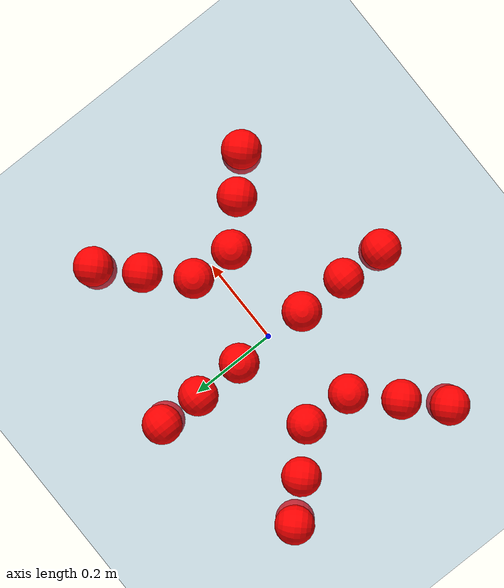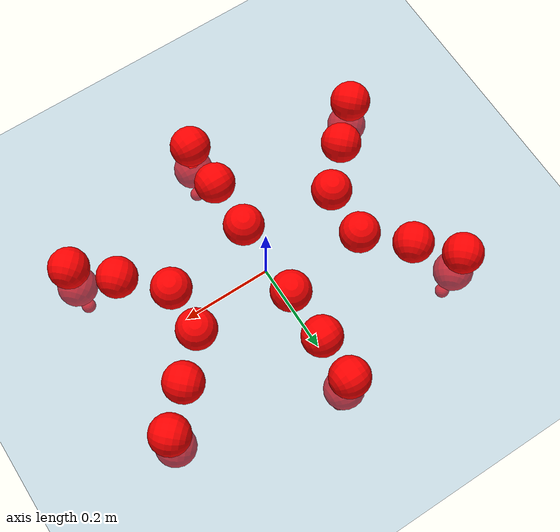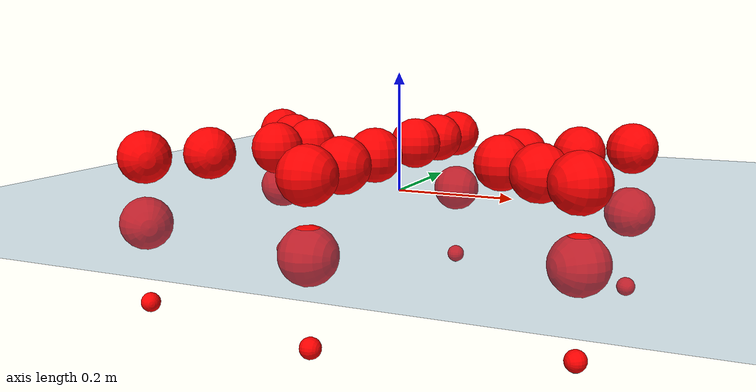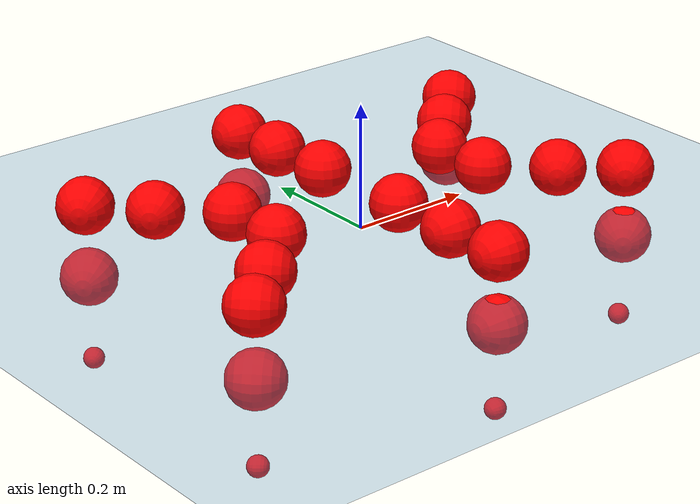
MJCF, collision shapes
<mujoco model="Golem">
  <compiler angle="radian" assetdir="assets" balanceinertia="true" inertiafromgeom="false"/>

  <option timestep="0.005" density="1.2" viscosity="2e-05"/>

  <size nkey="1"/>

  <visual>
    <quality shadowsize="8192"/>
    <map shadowclip="0.5"/>
  </visual>

  <default>
    <default class="/">
      <joint armature="0.01" damping="0.01" frictionloss="0.01"/>
      <geom contype="0" conaffinity="0" group="1" solref="-1000 -80"/>
      <site size="0.01 0.005 0.005" group="5"/>
      <general forcelimited="true" biastype="affine" gainprm="25" biasprm="0 -25 -0.5"/>
      <default class="visual">
        <geom type="mesh" group="2"/>
      </default>
      <default class="collision">
        <geom group="3"/>
      </default>
      <default class="foot">
        <geom size="0.01 0 0" condim="6" group="4" priority="1" solimp="0.015 1 0.01"/>
      </default>
      <default class="reward_collision_sphere">
        <geom group="5" rgba="1 0 0 1"/>
      </default>
    </default>
  </default>

  <asset>
    <texture type="skybox" colorspace="auto" name="//unnamed_texture_0" builtin="gradient" rgb1="0.95 0.95 0.95" rgb2="0.95 0.95 0.95" width="100" height="600"/>
    <texture type="2d" colorspace="auto" name="texplane" builtin="checker" rgb1="0.345 0.575 0.748" rgb2="0.345 0.575 0.748" markrgb="1 1 1" width="512" height="512"/>
    <material name="MatPlane" class="/" texture="texplane" texuniform="true" texrepeat="2 2" specular="0.9"/>
    <mesh name="body" class="/" file="body.stl" scale="0.001 0.001 0.001"/>
    <mesh name="coxa" class="/" file="coxa.stl" scale="0.001 0.001 0.001"/>
    <mesh name="femur" class="/" file="femur.stl" scale="0.001 0.001 0.001"/>
    <mesh name="tibia" class="/" file="tibia.stl" scale="0.001 0.001 0.001"/>
    <mesh name="tarsus" class="/" file="tarsus.stl" scale="0.001 0.001 0.001"/>
  </asset>

  <worldbody>
    <geom name="floor" class="/" size="100 100 0.125" type="plane" group="0" material="MatPlane"/>
    <light name="toplight_shadow" class="/" pos="0 0 5" dir="0.0990148 0.0990148 -0.990148" type="directional" ambient="0.04 0.04 0.04" diffuse="0.55 0.55 0.55" specular="0.12 0.12 0.12"/>
    <light name="toplight_fill" class="/" pos="0 0 5" dir="0.0990148 0.0990148 -0.990148" type="directional" castshadow="false" ambient="0.04 0.04 0.04" diffuse="0.3 0.3 0.3" specular="0.08 0.08 0.08"/>
    <body name="trunk" pos="-0.00283719 -0.0027797 -0.000169709" quat="0.999999 -0.000165449 -0.00063453 -0.000895725">
      <inertial pos="0.00322071 -0.000890514 -0.0019324" quat="0.999902 0.00926003 -0.00416903 -0.00967895" mass="5.30166" diaginertia="0.0352252 0.00892243 0.0156161"/>
      <joint name="//unnamed_joint_0" type="free"/>
      <geom name="//unnamed_geom_1" class="/" pos="0 0 0.0690729" quat="1 0 0 0" type="mesh" rgba="0.9 0.9 0.9 1" mesh="body"/>
      <site name="imu" class="/" pos="0.178785 0.0141852 0.106171" size="0.0111078"/>
      <camera name="track" class="/" pos="0 -1.9433 0" quat="0.707107 0.707107 0 0" mode="trackcom"/>
      <camera name="ego_camera" class="/" pos="0.166586 0 0.107926" quat="-0.5 -0.5 0.5 0.5"/>
      <body name="coxa_RR" pos="-0.229869 -0.0831403 0.0700988" quat="0.382918 -0.000537203 0.000345023 -0.923782">
        <inertial pos="-0.000313893 -0.000543789 0.00174863" quat="0.999998 0.00127539 0.000134472 0.00131377" mass="0.276987" diaginertia="0.0336195 0.00862521 0.0146659"/>
        <joint name="coxa_joint_RR" class="/" pos="0 0 0" axis="-0.00160088 0.000640761 -0.999999" range="-3.13932 3.0965" armature="0.0113275" damping="0.00408585" frictionloss="0.0116845"/>
        <geom name="//unnamed_geom_2" class="/" type="mesh" rgba="0.2 0.2 0.2 1" mesh="coxa"/>
        <geom name="//unnamed_geom_3" class="reward_collision_sphere" size="0.0444312" pos="-0.0384429 0 0"/>
        <body name="femur_RR" pos="0.0785544 0.000956341 -0.00315428" quat="0.49993 -0.500021 0.500038 0.50001">
          <inertial pos="-0.00130908 -0.000117838 -0.000501303" quat="0.999987 0.00505762 0.00022518 7.20228e-05" mass="0.264849" diaginertia="0.0335379 0.00846092 0.0143485"/>
          <joint name="femur_joint_RR" class="/" pos="0 0 0" axis="0.00925152 -0.00596255 -0.999939" stiffness="0.000514408" range="-3.15789 3.13109" armature="0.011812" damping="0.0189857" frictionloss="0.0110639"/>
          <geom name="//unnamed_geom_4" class="/" type="mesh" rgba="0.9 0.9 0.9 1" mesh="femur"/>
          <geom name="//unnamed_geom_5" class="reward_collision_sphere" size="0.0444312"/>
          <body name="tibia_RR" pos="0.00133114 -0.106632 -0.000863878" quat="0.000506317 1 -7.33102e-05 0.000161858">
            <inertial pos="0.00024623 -0.000224748 -0.00230363" quat="0.999904 -0.0100718 0.00705265 -0.00636052" mass="0.28191" diaginertia="0.0346441 0.00897726 0.0147601"/>
            <joint name="tibia_joint_RR" class="/" pos="0 0 0" axis="0.011911 -0.00695498 0.999905" range="-3.19558 3.14035" armature="0.00982652" damping="0" frictionloss="0.00962817"/>
            <geom name="//unnamed_geom_6" class="/" type="mesh" rgba="0.2 0.2 0.2 1" mesh="tibia"/>
            <geom name="//unnamed_geom_7" class="reward_collision_sphere" size="0.0444312"/>
            <body name="tarsus_RR" pos="0.11119 0.00260404 -0.00037696" quat="1 -4.60091e-05 -6.48789e-05 3.05602e-05">
              <inertial pos="0.0757648 0.000120293 -0.000403574" quat="0.496014 0.50309 0.500181 0.500689" mass="0.265455" diaginertia="0.0342706 0.00830129 0.0145033"/>
              <joint name="tarsus_joint_RR" class="/" pos="0 0 0" axis="0.000483439 0.00332053 0.999994" range="-3.11993 3.08237" armature="0.00993872" damping="0.0427672" frictionloss="0.01162"/>
              <geom name="//unnamed_geom_8" class="/" type="mesh" rgba="0.9 0.9 0.9 1" mesh="tarsus"/>
              <geom name="foot_1" class="foot" size="0.0111872" pos="0.14352 0 0" quat="0 -0.707107 0 0.707107"/>
              <geom name="//unnamed_geom_10" class="reward_collision_sphere" size="0.0444312"/>
              <geom name="//unnamed_geom_11" class="reward_collision_sphere" size="0.0166617" pos="0.137754 0 0"/>
              <site name="foot_1" class="foot" pos="0.14352 0 0" quat="0 -0.707107 0 0.707107" size="0.0111078"/>
            </body>
          </body>
        </body>
      </body>
      <body name="coxa_RM" pos="0.000135707 -0.126833 0.0731468" quat="0.707304 -0.000317878 -0.000430359 -0.70691">
        <inertial pos="-0.00245296 3.84339e-05 -0.00180342" quat="0.999907 0.0127906 0.00313609 0.0036049" mass="0.273984" diaginertia="0.033021 0.00863895 0.0141778"/>
        <joint name="coxa_joint_RM" class="/" pos="0 0 0" axis="-0.00334979 7.03231e-05 -0.999994" stiffness="0.00368277" range="-3.13875 3.1568" armature="0.0107558" damping="0.011747" frictionloss="0.00987496"/>
        <geom name="//unnamed_geom_12" class="/" type="mesh" rgba="0.2 0.2 0.2 1" mesh="coxa"/>
        <geom name="//unnamed_geom_13" class="reward_collision_sphere" size="0.0444312" pos="-0.0384429 0 0"/>
        <body name="femur_RM" pos="0.0775215 6.97257e-05 -0.00025496" quat="0.500486 -0.500285 0.498678 0.500549">
          <inertial pos="0.00168701 0.000251325 0.000133216" quat="0.99998 -0.00546068 0.00314113 -0.000423659" mass="0.271911" diaginertia="0.0347623 0.00836399 0.0146947"/>
          <joint name="femur_joint_RM" class="/" pos="0 0 0" axis="0.0115879 -0.00403526 -0.999925" range="-3.14835 3.12752" armature="0.012028" damping="0.0176271" frictionloss="0.0116619"/>
          <geom name="//unnamed_geom_14" class="/" type="mesh" rgba="0.9 0.9 0.9 1" mesh="femur"/>
          <geom name="//unnamed_geom_15" class="reward_collision_sphere" size="0.0444312"/>
          <body name="tibia_RM" pos="-0.000291483 -0.103263 -0.000970396" quat="-4.45995e-05 1 -1.70162e-05 -5.19352e-06">
            <inertial pos="-0.00112012 0.00211878 -0.00276234" quat="0.999997 0.00127227 -0.000431969 -0.00212699" mass="0.285671" diaginertia="0.0359469 0.00842202 0.0145028"/>
            <joint name="tibia_joint_RM" class="/" pos="0 0 0" axis="-0.00945847 -0.00860243 0.999918" range="-3.15465 3.0995" armature="0.0115368" damping="0.0114494" frictionloss="0.0100787"/>
            <geom name="//unnamed_geom_16" class="/" type="mesh" rgba="0.2 0.2 0.2 1" mesh="tibia"/>
            <geom name="//unnamed_geom_17" class="reward_collision_sphere" size="0.0444312"/>
            <body name="tarsus_RM" pos="0.11478 0.00118073 0.00013303" quat="1 -0.000215608 -0.000536763 -1.49734e-05">
              <inertial pos="0.0772357 -0.000626784 0.00112235" quat="0.500067 0.500109 0.499513 0.500311" mass="0.275131" diaginertia="0.0341949 0.00875452 0.015398"/>
              <joint name="tarsus_joint_RM" class="/" pos="0 0 0" axis="-0.00506771 -0.0128233 0.999905" range="-3.16035 3.13528" armature="0.0109852" damping="0.00491296" frictionloss="0.0105419"/>
              <geom name="//unnamed_geom_18" class="/" type="mesh" rgba="0.9 0.9 0.9 1" mesh="tarsus"/>
              <geom name="foot_2" class="foot" size="0.0104322" pos="0.14352 0 0" quat="0 -0.707107 0 0.707107"/>
              <geom name="//unnamed_geom_20" class="reward_collision_sphere" size="0.0444312"/>
              <geom name="//unnamed_geom_21" class="reward_collision_sphere" size="0.0166617" pos="0.137754 0 0"/>
              <site name="foot_2" class="foot" pos="0.14352 0 0" quat="0 -0.707107 0 0.707107" size="0.0111078"/>
            </body>
          </body>
        </body>
      </body>
      <body name="coxa_RF" pos="0.228391 -0.0789699 0.06762" quat="0.923886 0.000260794 0.000505258 -0.382668">
        <inertial pos="-0.000746123 -0.000195345 -0.000977645" quat="0.999929 -0.00103209 0.00361468 0.0113277" mass="0.281222" diaginertia="0.0366373 0.00868323 0.0149552"/>
        <joint name="coxa_joint_RF" class="/" pos="0 0 0" axis="-0.000187352 0.00161599 -0.999999" range="-3.18254 3.13919" armature="0.0124924" damping="0.0120276" frictionloss="0.010302"/>
        <geom name="//unnamed_geom_22" class="/" type="mesh" rgba="0.2 0.2 0.2 1" mesh="coxa"/>
        <geom name="//unnamed_geom_23" class="reward_collision_sphere" size="0.0444312" pos="-0.0384429 0 0"/>
        <body name="femur_RF" pos="0.0770109 0.000879502 0.00155388" quat="0.499956 -0.500446 0.499631 0.499966">
          <inertial pos="0.00274807 0.00124413 0.00265447" quat="0.999986 -0.002276 0.00392714 0.00253401" mass="0.265565" diaginertia="0.0359337 0.00843478 0.0148788"/>
          <joint name="femur_joint_RF" class="/" pos="0 0 0" axis="-0.0122108 -0.0082193 -0.999892" range="-3.14833 3.081" armature="0.0113745" damping="0.00891879" frictionloss="0.010747"/>
          <geom name="//unnamed_geom_24" class="/" type="mesh" rgba="0.9 0.9 0.9 1" mesh="femur"/>
          <geom name="//unnamed_geom_25" class="reward_collision_sphere" size="0.0444312"/>
          <body name="tibia_RF" pos="-0.00235779 -0.103027 0.00208495" quat="0.000384494 1 0.000419539 5.12718e-05">
            <inertial pos="-0.00137729 -0.00234455 0.00178215" quat="0.999906 -0.00368452 -0.0089496 0.00970743" mass="0.284299" diaginertia="0.0344253 0.00856904 0.0146449"/>
            <joint name="tibia_joint_RF" class="/" pos="0 0 0" axis="-0.00140536 0.000742827 0.999999" range="-3.1566 3.0813" armature="0.0117078" damping="0.019711" frictionloss="0.010605"/>
            <geom name="//unnamed_geom_26" class="/" type="mesh" rgba="0.2 0.2 0.2 1" mesh="tibia"/>
            <geom name="//unnamed_geom_27" class="reward_collision_sphere" size="0.0444312"/>
            <body name="tarsus_RF" pos="0.113195 0.00191091 -0.0018533" quat="0.999999 -0.000282044 0.00143093 0.000216909">
              <inertial pos="0.0788008 0.000187164 0.00100739" quat="0.500632 0.500594 0.499667 0.499105" mass="0.278677" diaginertia="0.0353955 0.00873238 0.0141264"/>
              <joint name="tarsus_joint_RF" class="/" pos="0 0 0" axis="0.00445856 -0.00126086 0.999989" range="-3.19347 3.14226" armature="0.0126008" damping="0.00596473" frictionloss="0.0114952"/>
              <geom name="//unnamed_geom_28" class="/" type="mesh" rgba="0.9 0.9 0.9 1" mesh="tarsus"/>
              <geom name="foot_3" class="foot" size="0.0118092" pos="0.14352 0 0" quat="0 -0.707107 0 0.707107"/>
              <geom name="//unnamed_geom_30" class="reward_collision_sphere" size="0.0444312"/>
              <geom name="//unnamed_geom_31" class="reward_collision_sphere" size="0.0166617" pos="0.137754 0 0"/>
              <site name="foot_3" class="foot" pos="0.14352 0 0" quat="0 -0.707107 0 0.707107" size="0.0111078"/>
            </body>
          </body>
        </body>
      </body>
      <body name="coxa_LR" pos="-0.225884 0.0833333 0.0653565" quat="0.382895 0.000963415 -0.000150323 0.923791">
        <inertial pos="0.000725127 0.000321153 -0.00084367" quat="0.999911 0.00759454 -0.00654305 -0.00874779" mass="0.265167" diaginertia="0.0344024 0.00864232 0.0146161"/>
        <joint name="coxa_joint_LR" class="/" pos="0 0 0" axis="0.00229056 0.00140072 -0.999996" stiffness="0.0133111" range="-3.16052 3.15743" armature="0.0126196" damping="0.00859248" frictionloss="0.0105779"/>
        <geom name="//unnamed_geom_32" class="/" type="mesh" rgba="0.2 0.2 0.2 1" mesh="coxa"/>
        <geom name="//unnamed_geom_33" class="reward_collision_sphere" size="0.0444312" pos="-0.0384429 0 0"/>
        <body name="femur_LR" pos="0.0767833 0.00190561 -0.00114858" quat="0.499785 -0.499591 0.500185 0.500438">
          <inertial pos="0.000608661 0.00104249 0.000738827" quat="0.999906 0.00653748 0.0112911 -0.00413803" mass="0.265076" diaginertia="0.0325098 0.00843745 0.0139647"/>
          <joint name="femur_joint_LR" class="/" pos="0 0 0" axis="0.00466758 0.00398126 0.999981" range="-3.16158 3.08568" armature="0.0125629" damping="0" frictionloss="0.0104851"/>
          <geom name="//unnamed_geom_34" class="/" type="mesh" rgba="0.9 0.9 0.9 1" mesh="femur"/>
          <geom name="//unnamed_geom_35" class="reward_collision_sphere" size="0.0444312"/>
          <body name="tibia_LR" pos="-0.00116101 -0.105932 -0.00255457" quat="0.00135464 0.999999 0.000209713 6.64696e-05">
            <inertial pos="0.00285762 0.00150196 0.000397089" quat="0.999917 -0.00816041 0.000918411 0.00996846" mass="0.267983" diaginertia="0.0353396 0.00904714 0.0146728"/>
            <joint name="tibia_joint_LR" class="/" pos="0 0 0" axis="-0.00453648 -0.00167626 -0.999988" stiffness="0.0089044" range="-3.14686 3.12999" armature="0.0119179" damping="0.0141937" frictionloss="0.0126195"/>
            <geom name="//unnamed_geom_36" class="/" type="mesh" rgba="0.2 0.2 0.2 1" mesh="tibia"/>
            <geom name="//unnamed_geom_37" class="reward_collision_sphere" size="0.0444312"/>
            <body name="tarsus_LR" pos="0.115867 -0.000390822 -0.00215885" quat="0.999999 -0.000141075 0.000426499 -0.00101492">
              <inertial pos="0.0748615 -0.00259557 -0.00163482" quat="0.493836 0.494944 0.502644 0.508434" mass="0.276311" diaginertia="0.0346752 0.00867483 0.0145501"/>
              <joint name="tarsus_joint_LR" class="/" pos="0 0 0" axis="-0.000436742 0.000975375 -0.999999" stiffness="0.0053156" range="-3.13307 3.14102" armature="0.0105043" damping="0.0292335" frictionloss="0.0102156"/>
              <geom name="//unnamed_geom_38" class="/" type="mesh" rgba="0.9 0.9 0.9 1" mesh="tarsus"/>
              <geom name="foot_4" class="foot" size="0.0113279" pos="0.14352 0 0" quat="0.707107 0 -0.707107 0"/>
              <geom name="//unnamed_geom_40" class="reward_collision_sphere" size="0.0444312"/>
              <geom name="//unnamed_geom_41" class="reward_collision_sphere" size="0.0166617" pos="0.137754 0 0"/>
              <site name="foot_4" class="foot" pos="0.14352 0 0" quat="0.707107 0 -0.707107 0" size="0.0111078"/>
            </body>
          </body>
        </body>
      </body>
      <body name="coxa_LM" pos="-0.00313992 0.126932 0.0714408" quat="0.707163 2.29173e-05 -7.9271e-05 0.707051">
        <inertial pos="0.00251904 -0.00195588 -0.00227842" quat="0.999925 -0.00648597 -0.00654018 -0.00805719" mass="0.276427" diaginertia="0.0345417 0.00887214 0.0151655"/>
        <joint name="coxa_joint_LM" class="/" pos="0 0 0" axis="0.00271182 -0.00231393 -0.999994" stiffness="0.00441529" range="-3.1385 3.14717" armature="0.0113641" damping="0" frictionloss="0.0118573"/>
        <geom name="//unnamed_geom_42" class="/" type="mesh" rgba="0.2 0.2 0.2 1" mesh="coxa"/>
        <geom name="//unnamed_geom_43" class="reward_collision_sphere" size="0.0444312" pos="-0.0384429 0 0"/>
        <body name="femur_LM" pos="0.0760506 0.00068894 -0.00285453" quat="0.50104 -0.499692 0.500098 0.499169">
          <inertial pos="-0.00244143 -2.92532e-06 -0.00189642" quat="0.999904 0.00175743 0.0071927 0.0117295" mass="0.291036" diaginertia="0.0356853 0.00886564 0.0151415"/>
          <joint name="femur_joint_LM" class="/" pos="0 0 0" axis="0.0037588 -0.00299148 0.999988" range="-3.08317 3.15712" armature="0.0128042" damping="0" frictionloss="0.0110311"/>
          <geom name="//unnamed_geom_44" class="/" type="mesh" rgba="0.9 0.9 0.9 1" mesh="femur"/>
          <geom name="//unnamed_geom_45" class="reward_collision_sphere" size="0.0444312"/>
          <body name="tibia_LM" pos="0.00326068 -0.100291 -9.90961e-05" quat="1.91778e-05 1 0.000175023 -0.000381233">
            <inertial pos="0.00134469 0.000793805 0.000479153" quat="0.999998 0.000662597 -0.00152914 -0.00102493" mass="0.278071" diaginertia="0.0339143 0.00853419 0.0153211"/>
            <joint name="tibia_joint_LM" class="/" pos="0 0 0" axis="0.0111796 0.00615292 -0.999919" range="-3.1199 3.14909" armature="0.0126911" damping="0.00666813" frictionloss="0.00961461"/>
            <geom name="//unnamed_geom_46" class="/" type="mesh" rgba="0.2 0.2 0.2 1" mesh="tibia"/>
            <geom name="//unnamed_geom_47" class="reward_collision_sphere" size="0.0444312"/>
            <body name="tarsus_LM" pos="0.110623 -0.00246586 0.00234505" quat="0.999999 -0.00117932 -0.00064274 0.000684493">
              <inertial pos="0.0786076 0.00180167 0.00284321" quat="0.496735 0.501202 0.503159 0.49888" mass="0.278322" diaginertia="0.0343312 0.00879788 0.0144516"/>
              <joint name="tarsus_joint_LM" class="/" pos="0 0 0" axis="-0.0100047 -0.00571066 -0.999934" stiffness="0.00885813" range="-3.14048 3.12173" armature="0.0112391" damping="0.0179876" frictionloss="0.0112406"/>
              <geom name="//unnamed_geom_48" class="/" type="mesh" rgba="0.9 0.9 0.9 1" mesh="tarsus"/>
              <geom name="foot_5" class="foot" size="0.0114517" pos="0.14352 0 0" quat="0.707107 0 -0.707107 0"/>
              <geom name="//unnamed_geom_50" class="reward_collision_sphere" size="0.0444312"/>
              <geom name="//unnamed_geom_51" class="reward_collision_sphere" size="0.0166617" pos="0.137754 0 0"/>
              <site name="foot_5" class="foot" pos="0.14352 0 0" quat="0.707107 0 -0.707107 0" size="0.0111078"/>
            </body>
          </body>
        </body>
      </body>
      <body name="coxa_LF" pos="0.230039 0.0784754 0.0667021" quat="0.924102 0.000474425 -0.000623485 0.382146">
        <inertial pos="-0.000371073 0.00108291 0.000309079" quat="0.999991 -0.000552832 -0.00204411 -0.00363321" mass="0.268313" diaginertia="0.0337207 0.0090511 0.0148372"/>
        <joint name="coxa_joint_LF" class="/" pos="0 0 0" axis="-0.0170974 0.00324787 -0.999849" range="-3.13227 3.1178" armature="0.0111943" damping="0.0220314" frictionloss="0.0117038"/>
        <geom name="//unnamed_geom_52" class="/" type="mesh" rgba="0.2 0.2 0.2 1" mesh="coxa"/>
        <geom name="//unnamed_geom_53" class="reward_collision_sphere" size="0.0444312" pos="-0.0384429 0 0"/>
        <body name="femur_LF" pos="0.0745717 0.000358001 -0.00181872" quat="0.500769 -0.49943 0.500492 0.499307">
          <inertial pos="0.00286648 -0.000315066 0.000593775" quat="0.999943 0.00881715 0.00397848 -0.00460337" mass="0.27129" diaginertia="0.0333923 0.00871892 0.0148606"/>
          <joint name="femur_joint_LF" class="/" pos="0 0 0" axis="0.0048415 0.0104724 0.999933" range="-3.1429 3.11388" armature="0.0108897" damping="0" frictionloss="0.0113985"/>
          <geom name="//unnamed_geom_54" class="/" type="mesh" rgba="0.9 0.9 0.9 1" mesh="femur"/>
          <geom name="//unnamed_geom_55" class="reward_collision_sphere" size="0.0444312"/>
          <body name="tibia_LF" pos="-0.00108921 -0.107714 -0.000480343" quat="0.000555013 1 0.00081629 -0.000115533">
            <inertial pos="0.000518615 -0.00155413 0.000331947" quat="0.999997 0.00182439 0.00144629 0.00102554" mass="0.274985" diaginertia="0.0332734 0.00864511 0.014326"/>
            <joint name="tibia_joint_LF" class="/" pos="0 0 0" axis="-0.00984005 0.00862519 -0.999914" range="-3.18722 3.11856" armature="0.0126614" damping="0" frictionloss="0.0121088"/>
            <geom name="//unnamed_geom_56" class="/" type="mesh" rgba="0.2 0.2 0.2 1" mesh="tibia"/>
            <geom name="//unnamed_geom_57" class="reward_collision_sphere" size="0.0444312"/>
            <body name="tarsus_LF" pos="0.114311 0.00283478 -0.00304334" quat="1 -8.53233e-05 0.000102538 8.25288e-05">
              <inertial pos="0.0750557 0.000740422 0.000472164" quat="0.502656 0.501774 0.499542 0.496001" mass="0.272396" diaginertia="0.0347738 0.00874618 0.0141167"/>
              <joint name="tarsus_joint_LF" class="/" pos="0 0 0" axis="-0.00345223 0.00188524 -0.999992" stiffness="0.0258443" range="-3.10687 3.09091" armature="0.0120367" damping="0.0253923" frictionloss="0.0125399"/>
              <geom name="//unnamed_geom_58" class="/" type="mesh" rgba="0.9 0.9 0.9 1" mesh="tarsus"/>
              <geom name="foot_6" class="foot" size="0.0101057" pos="0.14352 0 0" quat="0.707107 0 -0.707107 0"/>
              <geom name="//unnamed_geom_60" class="reward_collision_sphere" size="0.0444312"/>
              <geom name="//unnamed_geom_61" class="reward_collision_sphere" size="0.0166617" pos="0.137754 0 0"/>
              <site name="foot_6" class="foot" pos="0.14352 0 0" quat="0.707107 0 -0.707107 0" size="0.0111078"/>
            </body>
          </body>
        </body>
      </body>
    </body>
  </worldbody>

  <contact>
    <pair class="/" geom1="floor" geom2="foot_1" name="//unnamed_contact_0"/>
    <pair class="/" geom1="floor" geom2="foot_2" name="//unnamed_contact_1"/>
    <pair class="/" geom1="floor" geom2="foot_3" name="//unnamed_contact_2"/>
    <pair class="/" geom1="floor" geom2="foot_4" name="//unnamed_contact_3"/>
    <pair class="/" geom1="floor" geom2="foot_5" name="//unnamed_contact_4"/>
    <pair class="/" geom1="floor" geom2="foot_6" name="//unnamed_contact_5"/>
  </contact>

  <actuator>
    <general name="coxa_joint_RR" class="/" joint="coxa_joint_RR" forcerange="-7.67419 7.67419" gainprm="26.428" biasprm="0 -26.428 -0.530112"/>
    <general name="femur_joint_RR" class="/" joint="femur_joint_RR" forcerange="-8.84646 8.84646" gainprm="26.428" biasprm="0 -26.428 -0.530112"/>
    <general name="tibia_joint_RR" class="/" joint="tibia_joint_RR" forcerange="-7.86902 7.86902" gainprm="26.428" biasprm="0 -26.428 -0.530112"/>
    <general name="tarsus_joint_RR" class="/" joint="tarsus_joint_RR" forcerange="-8.93171 8.93171" gainprm="26.428" biasprm="0 -26.428 -0.530112"/>
    <general name="coxa_joint_RM" class="/" joint="coxa_joint_RM" forcerange="-8.14825 8.14825" gainprm="26.428" biasprm="0 -26.428 -0.530112"/>
    <general name="femur_joint_RM" class="/" joint="femur_joint_RM" forcerange="-8.05937 8.05937" gainprm="26.428" biasprm="0 -26.428 -0.530112"/>
    <general name="tibia_joint_RM" class="/" joint="tibia_joint_RM" forcerange="-7.51507 7.51507" gainprm="26.428" biasprm="0 -26.428 -0.530112"/>
    <general name="tarsus_joint_RM" class="/" joint="tarsus_joint_RM" forcerange="-8.42332 8.42332" gainprm="26.428" biasprm="0 -26.428 -0.530112"/>
    <general name="coxa_joint_RF" class="/" joint="coxa_joint_RF" forcerange="-8.1687 8.1687" gainprm="26.428" biasprm="0 -26.428 -0.530112"/>
    <general name="femur_joint_RF" class="/" joint="femur_joint_RF" forcerange="-8.27476 8.27476" gainprm="26.428" biasprm="0 -26.428 -0.530112"/>
    <general name="tibia_joint_RF" class="/" joint="tibia_joint_RF" forcerange="-8.5958 8.5958" gainprm="26.428" biasprm="0 -26.428 -0.530112"/>
    <general name="tarsus_joint_RF" class="/" joint="tarsus_joint_RF" forcerange="-8.81424 8.81424" gainprm="26.428" biasprm="0 -26.428 -0.530112"/>
    <general name="coxa_joint_LR" class="/" joint="coxa_joint_LR" forcerange="-8.02169 8.02169" gainprm="26.428" biasprm="0 -26.428 -0.530112"/>
    <general name="femur_joint_LR" class="/" joint="femur_joint_LR" forcerange="-7.35792 7.35792" gainprm="26.428" biasprm="0 -26.428 -0.530112"/>
    <general name="tibia_joint_LR" class="/" joint="tibia_joint_LR" forcerange="-7.41678 7.41678" gainprm="26.428" biasprm="0 -26.428 -0.530112"/>
    <general name="tarsus_joint_LR" class="/" joint="tarsus_joint_LR" forcerange="-7.24657 7.24657" gainprm="26.428" biasprm="0 -26.428 -0.530112"/>
    <general name="coxa_joint_LM" class="/" joint="coxa_joint_LM" forcerange="-7.4157 7.4157" gainprm="26.428" biasprm="0 -26.428 -0.530112"/>
    <general name="femur_joint_LM" class="/" joint="femur_joint_LM" forcerange="-7.82349 7.82349" gainprm="26.428" biasprm="0 -26.428 -0.530112"/>
    <general name="tibia_joint_LM" class="/" joint="tibia_joint_LM" forcerange="-7.2694 7.2694" gainprm="26.428" biasprm="0 -26.428 -0.530112"/>
    <general name="tarsus_joint_LM" class="/" joint="tarsus_joint_LM" forcerange="-8.07519 8.07519" gainprm="26.428" biasprm="0 -26.428 -0.530112"/>
    <general name="coxa_joint_LF" class="/" joint="coxa_joint_LF" forcerange="-7.57967 7.57967" gainprm="26.428" biasprm="0 -26.428 -0.530112"/>
    <general name="femur_joint_LF" class="/" joint="femur_joint_LF" forcerange="-8.30783 8.30783" gainprm="26.428" biasprm="0 -26.428 -0.530112"/>
    <general name="tibia_joint_LF" class="/" joint="tibia_joint_LF" forcerange="-8.96795 8.96795" gainprm="26.428" biasprm="0 -26.428 -0.530112"/>
    <general name="tarsus_joint_LF" class="/" joint="tarsus_joint_LF" forcerange="-7.43879 7.43879" gainprm="26.428" biasprm="0 -26.428 -0.530112"/>
  </actuator>

  <sensor>
    <gyro site="imu" name="imu_angular_velocity"/>
    <velocimeter site="imu" name="imu_linear_velocity"/>
    <framelinvel objtype="site" objname="foot_1" name="foot_1_global_linear_velocity"/>
    <framelinvel objtype="site" objname="foot_2" name="foot_2_global_linear_velocity"/>
    <framelinvel objtype="site" objname="foot_3" name="foot_3_global_linear_velocity"/>
    <framelinvel objtype="site" objname="foot_4" name="foot_4_global_linear_velocity"/>
    <framelinvel objtype="site" objname="foot_5" name="foot_5_global_linear_velocity"/>
    <framelinvel objtype="site" objname="foot_6" name="foot_6_global_linear_velocity"/>
  </sensor>

  <keyframe>
    <key name="home" qpos="0 0 0.1457 1 0 0 0 0 0 0 0 0 0 0 0 0 0 0 0 0 0 0 0 0 0 0 0 0 0 0 0"/>
  </keyframe>
</mujoco>
